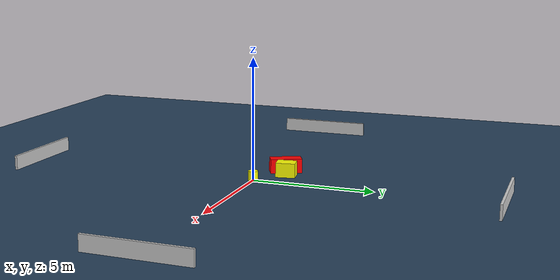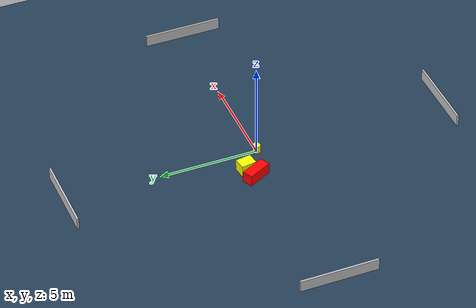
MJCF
<?xml version="1.0" ?>
<mujoco model="generated_environment">
  <option timestep="0.01" integrator="RK4" cone="elliptic"/>
  <default>
    <geom density="1"/>
  </default>
  <asset>
    <texture builtin="gradient" height="3072" name="skybox" rgb1="0.3 0.5 0.7" rgb2="0 0 0" type="skybox" width="512"/>
    <texture builtin="checker" height="300" name="groundplane" rgb1="0.2 0.3 0.4" rgb2="0.1 0.2 0.3" type="2d" width="300"/>
    <material name="groundplane" reflectance="0.2" texrepeat="5 5" texture="groundplane"/>
  </asset>
  <worldbody>
    <light dir="0 0 -1" directional="true" pos="0 0 1.5"/>
    <geom condim="3" friction="0.5 0.005 0.001" material="groundplane" name="floor" pos="0 0 0" size="0 0 0.05" type="plane"/>
    <body name="walls">
      <geom name="wall_1" condim="4" pos="-10.0 0.0 0.3" rgba="0.800000011920929 0.800000011920929 0.800000011920929 1.0" size="0.05 2.0 0.3" type="box"/>
      <geom name="wall_2" condim="4" pos="10.0 0.0 0.3" rgba="0.800000011920929 0.800000011920929 0.800000011920929 1.0" size="0.05 2.0 0.3" type="box"/>
      <geom name="wall_3" condim="4" pos="0.0 -10.0 0.3" rgba="0.800000011920929 0.800000011920929 0.800000011920929 1.0" size="2.0 0.05 0.3" type="box"/>
      <geom name="wall_4" condim="4" pos="0.0 10.0 0.3" rgba="0.800000011920929 0.800000011920929 0.800000011920929 1.0" size="2.0 0.05 0.3" type="box"/>
    </body>
    <body name="robot">
      <joint name="joint_x" type="slide" pos="0 0 0" axis="1 0 0"/>
      <joint name="joint_y" type="slide" pos="0 0 0" axis="0 1 0"/>
      <geom name="robot" type="cylinder" pos="0.0 0.0 0.2" size="0.2 0.2 0.0" mass="5.0" friction="1.0 0.005 0.0001" condim="4" rgba="1.0 1.0 0.0 1.0"/>
    </body>
    <body name="obstacle_1_movable">
      <geom name="obstacle_1_movable" condim="4" pos="-1.1466671080388655 1.0217705756318234 0.3" euler="0 0 188.7865324086675" friction="0.0 0.005 0.001" rgba="1.0 1.0 0.0 1.0" size="0.3086366831916211 0.40064386466702245 0.3" type="box" mass="0.1"/>
      <joint type="free"/>
    </body>
    <body name="obstacle_2_static">
      <geom name="obstacle_2_static" condim="4" pos="-1.801537171071897 0.7641561156408803 0.3" euler="0 0 296.8350845662602" friction="0.0 0.005 0.001" rgba="1.0 0.0 0.0 1.0" size="0.6575880329054763 0.26911418905284273 0.3" type="box"/>
    </body>
  </worldbody>
  <actuator>
    <motor name="actuator_x" joint="joint_x" gear="1" ctrlrange="-1 1"/>
    <motor name="actuator_y" joint="joint_y" gear="1" ctrlrange="-1 1"/>
  </actuator>
</mujoco>
